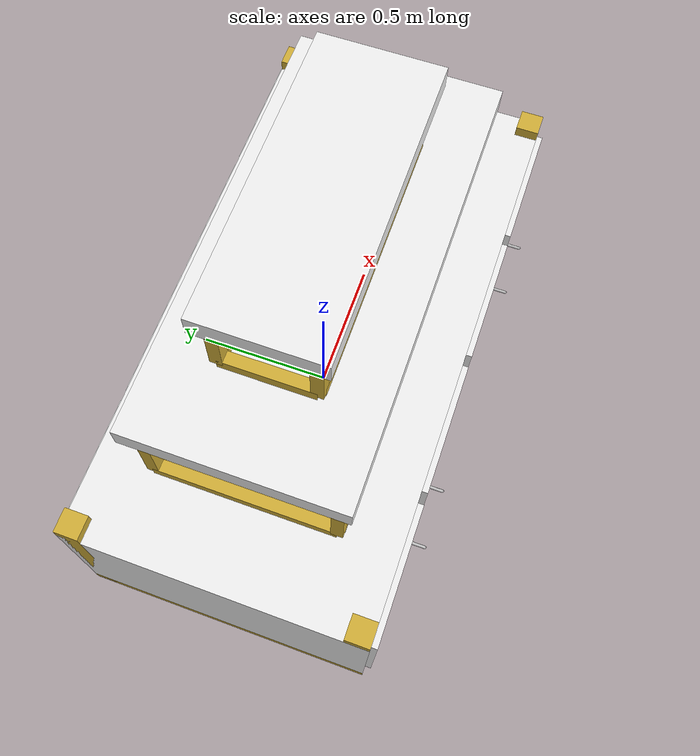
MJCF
<mujoco model="supermarket_island">
  <compiler angle="degree" coordinate="local" />
  <option timestep="0.01" gravity="0 0 -9.81" />

  <asset>
    <material name="mat_white" rgba="0.95 0.95 0.95 1" specular="0.2" shininess="0.1" />
    <material name="mat_gold" rgba="0.83 0.69 0.22 1" specular="0.9" shininess="0.9" />
    <material name="mat_silver" rgba="0.8 0.8 0.8 1" specular="0.9" shininess="0.8" />
  </asset>

  <default>
    <default class="cabinet_door">
      <geom type="box" size="0.23 0.01 0.23" material="mat_white" />
    </default>
    <default class="handle">
      <geom type="capsule" size="0.005 0.04" material="mat_silver" />
    </default>
  </default>

  <worldbody>
    <body name="island_display" pos="0 0 0">
      <!-- ================= LEVEL 1: BASE CABINET ================= -->
      <!-- Main Cabinet Body -->
      <!-- Width 2m (size 1.0), Depth 1m (size 0.5), Height 0.6m -->
      <geom name="base_body" type="box" size="1.0 0.5 0.28" pos="0 0 0.32" material="mat_white" />

      <!-- Gold Base Frame (Kickplate/Structure) -->
      <geom name="base_frame_bottom" type="box" size="1.0 0.5 0.04" pos="0 0 0.04" material="mat_gold" />
      <!-- Vertical Gold Accents at Corners -->
      <geom name="corner_FL" type="box" size="0.04 0.04 0.32" pos="-0.96 -0.46 0.32" material="mat_gold" />
      <geom name="corner_FR" type="box" size="0.04 0.04 0.32" pos="0.96 -0.46 0.32" material="mat_gold" />
      <geom name="corner_BL" type="box" size="0.04 0.04 0.32" pos="-0.96 0.46 0.32" material="mat_gold" />
      <geom name="corner_BR" type="box" size="0.04 0.04 0.32" pos="0.96 0.46 0.32" material="mat_gold" />

      <!-- Cabinet Doors (Front) -->
      <!-- Front face is at y = -0.5 -->
      <!-- 4 Doors -->
      <body name="doors_front" pos="0 -0.51 0.32">
        <!-- Door 1 (Left) -->
        <body name="door_1" pos="-0.75 0 0">
            <geom class="cabinet_door" />
            <geom class="handle" pos="0.15 -0.015 0.05" euler="90 0 0" />
        </body>
        <!-- Door 2 (Mid-Left) -->
        <body name="door_2" pos="-0.25 0 0">
            <geom class="cabinet_door" />
            <geom class="handle" pos="-0.15 -0.015 0.05" euler="90 0 0" />
        </body>
        <!-- Door 3 (Mid-Right) -->
        <body name="door_3" pos="0.25 0 0">
            <geom class="cabinet_door" />
            <geom class="handle" pos="0.15 -0.015 0.05" euler="90 0 0" />
        </body>
        <!-- Door 4 (Right) -->
        <body name="door_4" pos="0.75 0 0">
            <geom class="cabinet_door" />
            <geom class="handle" pos="-0.15 -0.015 0.05" euler="90 0 0" />
        </body>
      </body>

      <!-- Cabinet Doors (Back) - Optional, assuming symmetric -->
      <body name="doors_back" pos="0 0.51 0.32" euler="0 0 180">
        <body name="door_b1" pos="-0.75 0 0">
            <geom class="cabinet_door" />
            <geom class="handle" pos="0.15 -0.015 0.05" euler="90 0 0" />
        </body>
        <body name="door_b2" pos="-0.25 0 0">
            <geom class="cabinet_door" />
            <geom class="handle" pos="-0.15 -0.015 0.05" euler="90 0 0" />
        </body>
        <body name="door_b3" pos="0.25 0 0">
            <geom class="cabinet_door" />
            <geom class="handle" pos="0.15 -0.015 0.05" euler="90 0 0" />
        </body>
        <body name="door_b4" pos="0.75 0 0">
            <geom class="cabinet_door" />
            <geom class="handle" pos="-0.15 -0.015 0.05" euler="90 0 0" />
        </body>
      </body>

      <!-- ================= LEVEL 2: MIDDLE SHELF ================= -->
      <!-- Sits on top of Base (z=0.6) -->
      <!-- Shelf size: 1.5m x 0.7m (size 0.75 0.35) -->
      <!-- Frame Height: 0.3m -->

      <body name="level_2" pos="0 0 0.6">
        <!-- Base Frame for Level 2 -->
        <!-- Rectangular loop on the counter -->
        <geom name="l2_base_front" type="box" size="0.7 0.02 0.02" pos="0 -0.3 0.02" material="mat_gold" />
        <geom name="l2_base_back" type="box" size="0.7 0.02 0.02" pos="0 0.3 0.02" material="mat_gold" />
        <geom name="l2_base_left" type="box" size="0.02 0.3 0.02" pos="-0.7 0 0.02" material="mat_gold" />
        <geom name="l2_base_right" type="box" size="0.02 0.3 0.02" pos="0.7 0 0.02" material="mat_gold" />

        <!-- Vertical Posts -->
        <geom name="l2_post_FL" type="box" size="0.02 0.02 0.15" pos="-0.7 -0.3 0.17" material="mat_gold" />
        <geom name="l2_post_FR" type="box" size="0.02 0.02 0.15" pos="0.7 -0.3 0.17" material="mat_gold" />
        <geom name="l2_post_BL" type="box" size="0.02 0.02 0.15" pos="-0.7 0.3 0.17" material="mat_gold" />
        <geom name="l2_post_BR" type="box" size="0.02 0.02 0.15" pos="0.7 0.3 0.17" material="mat_gold" />

        <!-- Top Frame under Shelf -->
        <!-- Same as base frame but at top -->

        <!-- The Shelf itself -->
        <geom name="shelf_2" type="box" size="0.75 0.35 0.04" pos="0 0 0.36" material="mat_white" />
      </body>

      <!-- ================= LEVEL 3: TOP SHELF ================= -->
      <!-- Sits on top of Level 2 (z = 0.6 + 0.36 + 0.04 = 1.0 approx) -->
      <!-- Let's say z relative to origin is 0.6 + 0.4 = 1.0 -->

      <body name="level_3" pos="0 0 1.0">
        <!-- Shelf size: 1.0m x 0.4m (size 0.5 0.2) -->
        <!-- Frame Height: 0.25m -->

        <!-- Base Frame for Level 3 -->
        <geom name="l3_base_front" type="box" size="0.45 0.02 0.02" pos="0 -0.15 0.02" material="mat_gold" />
        <geom name="l3_base_back" type="box" size="0.45 0.02 0.02" pos="0 0.15 0.02" material="mat_gold" />
        <geom name="l3_base_left" type="box" size="0.02 0.15 0.02" pos="-0.45 0 0.02" material="mat_gold" />
        <geom name="l3_base_right" type="box" size="0.02 0.15 0.02" pos="0.45 0 0.02" material="mat_gold" />

        <!-- Vertical Posts -->
        <geom name="l3_post_FL" type="box" size="0.02 0.02 0.12" pos="-0.45 -0.15 0.14" material="mat_gold" />
        <geom name="l3_post_FR" type="box" size="0.02 0.02 0.12" pos="0.45 -0.15 0.14" material="mat_gold" />
        <geom name="l3_post_BL" type="box" size="0.02 0.02 0.12" pos="-0.45 0.15 0.14" material="mat_gold" />
        <geom name="l3_post_BR" type="box" size="0.02 0.02 0.12" pos="0.45 0.15 0.14" material="mat_gold" />

        <!-- The Shelf itself -->
        <geom name="shelf_3" type="box" size="0.5 0.2 0.04" pos="0 0 0.28" material="mat_white" />
      </body>

    </body>
  </worldbody>
</mujoco>
